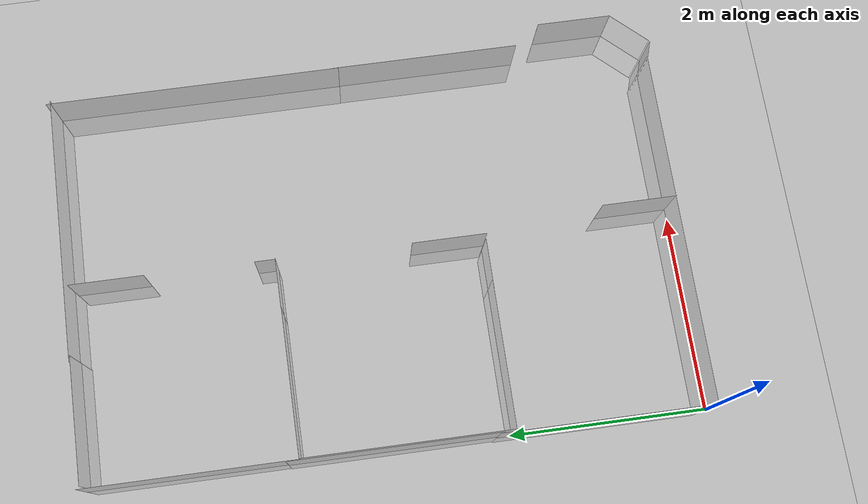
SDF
<sdf version="1.7">
 <world name="default">
  <light name="sun" type="directional">
   <pose>0 0 10 0 -0 0</pose>
   <diffuse>0.8 0.8 0.8 1</diffuse>
   <specular>0.1 0.1 0.1 1</specular>
   <attenuation>
    <range>1000</range>
    <constant>0.9</constant>
    <linear>0.01</linear>
    <quadratic>0.001</quadratic>
   </attenuation>
   <direction>-0.5 0.5 -1</direction>
   <spot><inner_angle>0</inner_angle><outer_angle>0</outer_angle><falloff>0</falloff></spot>
  </light>
  <model name="ground_plane">
   <static>1</static>
   <link name="link">
    <collision name="collision">
     <geometry><plane><normal>0 0 1</normal><size>100 100</size></plane></geometry>
     <surface><friction><ode><mu>100</mu><mu2>50</mu2></ode></friction></surface>
    </collision>
    <visual name="visual">
     <cast_shadows>0</cast_shadows>
     <geometry><plane><normal>0 0 1</normal><size>100 100</size></plane></geometry>
     <material>
      <script><uri>file://media/materials/scripts/gazebo.material</uri><name>Gazebo/Grey</name></script>
     </material>
    </visual>
   </link>
  </model>
  <model name="wall_0">
   <static>1</static>
   <link name="link">
    <collision name="collision"><geometry><box><size>2.1336 0.001 1</size></box></geometry></collision>
    <visual name="visual">
     <geometry><box><size>2.1336 0.001 1</size></box></geometry>
     <material>
      <script><name>Gazebo/White</name><uri>file://media/materials/scripts/gazebo.material</uri></script>
     </material>
    </visual>
   </link>
   <pose>0 1.0668 0 0 -0 1.5708</pose>
  </model>
  <model name="wall_6">
   <static>1</static>
   <link name="link">
    <collision name="collision"><geometry><box><size>2.74321 0.001 1</size></box></geometry></collision>
    <visual name="visual">
     <geometry><box><size>2.74321 0.001 1</size></box></geometry>
     <material>
      <script><name>Gazebo/White</name><uri>file://media/materials/scripts/gazebo.material</uri></script>
     </material>
    </visual>
   </link>
   <pose>2.61691 6.21396 0 0 -0 0</pose>
  </model>
  <model name="wall_7">
   <static>1</static>
   <link name="link">
    <collision name="collision"><geometry><box><size>3.04801 0.001 1</size></box></geometry></collision>
    <visual name="visual">
     <geometry><box><size>3.04801 0.001 1</size></box></geometry>
     <material>
      <script><name>Gazebo/White</name><uri>file://media/materials/scripts/gazebo.material</uri></script>
     </material>
    </visual>
   </link>
   <pose>3.95892 4.73747 0 0 0 -1.5708</pose>
  </model>
  <model name="wall_8">
   <static>1</static>
   <link name="link">
    <collision name="collision"><geometry><box><size>3.65761 0.001 1</size></box></geometry></collision>
    <visual name="visual">
     <geometry><box><size>3.65761 0.001 1</size></box></geometry>
     <material>
      <script><name>Gazebo/White</name><uri>file://media/materials/scripts/gazebo.material</uri></script>
     </material>
    </visual>
   </link>
   <pose>1.8288 0 0 0 0 -3.14159</pose>
  </model>
  <model name="wall_9">
   <static>1</static>
   <link name="link">
    <collision name="collision"><geometry><box><size>0.762002 0.001 1</size></box></geometry></collision>
    <visual name="visual">
     <geometry><box><size>0.762002 0.001 1</size></box></geometry>
     <material>
      <script><name>Gazebo/White</name><uri>file://media/materials/scripts/gazebo.material</uri></script>
     </material>
    </visual>
   </link>
   <pose>4.16423 0.688017 0 0 -0 1.5708</pose>
  </model>
  <model name="wall_10">
   <static>1</static>
   <link name="link">
    <collision name="collision"><geometry><box><size>1.4986 0.001 1</size></box></geometry></collision>
    <visual name="visual">
     <geometry><box><size>1.4986 0.001 1</size></box></geometry>
     <material>
      <script><name>Gazebo/White</name><uri>file://media/materials/scripts/gazebo.material</uri></script>
     </material>
    </visual>
   </link>
   <pose>0.764395 1.97813 0 0 -0 0</pose>
  </model>
  <model name="wall_11">
   <static>1</static>
   <link name="link">
    <collision name="collision"><geometry><box><size>0.762002 0.001 1</size></box></geometry></collision>
    <visual name="visual">
     <geometry><box><size>0.762002 0.001 1</size></box></geometry>
     <material>
      <script><name>Gazebo/White</name><uri>file://media/materials/scripts/gazebo.material</uri></script>
     </material>
    </visual>
   </link>
   <pose>2.12287 0.371634 0 0 0 -1.5708</pose>
  </model>
  <model name="wall_12">
   <static>1</static>
   <link name="link">
    <collision name="collision"><geometry><box><size>1.4986 0.001 1</size></box></geometry></collision>
    <visual name="visual">
     <geometry><box><size>1.4986 0.001 1</size></box></geometry>
     <material>
      <script><name>Gazebo/White</name><uri>file://media/materials/scripts/gazebo.material</uri></script>
     </material>
    </visual>
   </link>
   <pose>0.76466 4.09621 0 0 0 -3.14159</pose>
  </model>
  <model name="wall_19">
   <static>1</static>
   <link name="link">
    <collision name="collision"><geometry><box><size>1.27 0.001 1</size></box></geometry></collision>
    <visual name="visual">
     <geometry><box><size>1.27 0.001 1</size></box></geometry>
     <material>
      <script><name>Gazebo/White</name><uri>file://media/materials/scripts/gazebo.material</uri></script>
     </material>
    </visual>
   </link>
   <pose>0.674367 6.2036 0 0 -0 0</pose>
  </model>
  <model name="wall_20">
   <static>1</static>
   <link name="link">
    <collision name="collision"><geometry><box><size>0.2032 0.001 1</size></box></geometry></collision>
    <visual name="visual">
     <geometry><box><size>0.2032 0.001 1</size></box></geometry>
     <material>
      <script><name>Gazebo/White</name><uri>file://media/materials/scripts/gazebo.material</uri></script>
     </material>
    </visual>
   </link>
   <pose>2.00602 4.20513 0 0 0 -1.5708</pose>
  </model>
  <model name="wall_21">
   <static>1</static>
   <link name="link">
    <collision name="collision"><geometry><box><size>0.485267 0.001 1</size></box></geometry></collision>
    <visual name="visual">
     <geometry><box><size>0.485267 0.001 1</size></box></geometry>
     <material>
      <script><name>Gazebo/White</name><uri>file://media/materials/scripts/gazebo.material</uri></script>
     </material>
    </visual>
   </link>
   <pose>3.99541 0.128873 0 0 0 -2.31917</pose>
  </model>
  <model name="wall_26">
   <static>1</static>
   <link name="link">
    <collision name="collision"><geometry><box><size>1.9304 0.001 1</size></box></geometry></collision>
    <visual name="visual">
     <geometry><box><size>1.9304 0.001 1</size></box></geometry>
     <material>
      <script><name>Gazebo/White</name><uri>file://media/materials/scripts/gazebo.material</uri></script>
     </material>
    </visual>
   </link>
   <pose>3.96138 2.30263 0 0 -0 1.5708</pose>
  </model>
  <gravity>0 0 -9.8</gravity>
  <magnetic_field>6e-06 2.3e-05 -4.2e-05</magnetic_field>
  <atmosphere type="adiabatic"/>
  <physics name="default_physics" default="0" type="ode">
   <max_step_size>0.001</max_step_size>
   <real_time_factor>1</real_time_factor>
   <real_time_update_rate>1000</real_time_update_rate>
  </physics>
  <scene><ambient>0.4 0.4 0.4 1</ambient><background>0.7 0.7 0.7 1</background><shadows>1</shadows></scene>
  <spherical_coordinates>
   <surface_model>EARTH_WGS84</surface_model>
   <latitude_deg>0</latitude_deg>
   <longitude_deg>0</longitude_deg>
   <elevation>0</elevation>
   <heading_deg>0</heading_deg>
  </spherical_coordinates>
  <model name="wall_0_clone">
   <static>1</static>
   <link name="link">
    <collision name="collision"><geometry><box><size>2.1336 0.001 1</size></box></geometry></collision>
    <visual name="visual">
     <geometry><box><size>2.1336 0.001 1</size></box></geometry>
     <material>
      <script><name>Gazebo/White</name><uri>file://media/materials/scripts/gazebo.material</uri></script>
     </material>
    </visual>
   </link>
   <pose>0.009123 3.15874 0 0 -0 1.5708</pose>
  </model>
  <model name="wall_0_clone_clone">
   <static>1</static>
   <link name="link">
    <collision name="collision"><geometry><box><size>2.1336 0.001 1</size></box></geometry></collision>
    <visual name="visual">
     <geometry><box><size>2.1336 0.001 1</size></box></geometry>
     <material>
      <script><name>Gazebo/White</name><uri>file://media/materials/scripts/gazebo.material</uri></script>
     </material>
    </visual>
   </link>
   <pose>0.013973 5.17143 0 0 -0 1.5708</pose>
  </model>
  <model name="wall_24_clone">
   <static>1</static>
   <link name="link">
    <collision name="collision"><geometry><box><size>0.508001 0.001 1</size></box></geometry></collision>
    <visual name="visual">
     <geometry><box><size>0.508001 0.001 1</size></box></geometry>
     <material>
      <script><name>Gazebo/White</name><uri>file://media/materials/scripts/gazebo.material</uri></script>
     </material>
    </visual>
   </link>
   <pose>1.68339 1.97667 0 0 -0 0</pose>
  </model>
  <model name="wall_24_clone_0">
   <static>1</static>
   <link name="link">
    <collision name="collision"><geometry><box><size>0.508001 0.001 1</size></box></geometry></collision>
    <visual name="visual">
     <geometry><box><size>0.508001 0.001 1</size></box></geometry>
     <material>
      <script><name>Gazebo/White</name><uri>file://media/materials/scripts/gazebo.material</uri></script>
     </material>
    </visual>
   </link>
   <pose>1.76423 4.09901 0 0 -0 0</pose>
  </model>
  <model name="wall_11_clone">
   <static>1</static>
   <link name="link">
    <collision name="collision"><geometry><box><size>0.762002 0.001 1</size></box></geometry></collision>
    <visual name="visual">
     <geometry><box><size>0.762002 0.001 1</size></box></geometry>
     <material>
      <script><name>Gazebo/White</name><uri>file://media/materials/scripts/gazebo.material</uri></script>
     </material>
    </visual>
   </link>
   <pose>1.9885 2.33755 0 0 0 -1.5708</pose>
  </model>
  <model name="wall_11_clone_0">
   <static>1</static>
   <link name="link">
    <collision name="collision"><geometry><box><size>0.762002 0.001 1</size></box></geometry></collision>
    <visual name="visual">
     <geometry><box><size>0.762002 0.001 1</size></box></geometry>
     <material>
      <script><name>Gazebo/White</name><uri>file://media/materials/scripts/gazebo.material</uri></script>
     </material>
    </visual>
   </link>
   <pose>2.01617 5.79524 0 0 0 -1.5708</pose>
  </model>
  <model name="wall_0_clone_0">
   <static>1</static>
   <link name="link">
    <collision name="collision"><geometry><box><size>2.1336 0.001 1</size></box></geometry></collision>
    <visual name="visual">
     <geometry><box><size>2.1336 0.001 1</size></box></geometry>
     <material>
      <script><name>Gazebo/White</name><uri>file://media/materials/scripts/gazebo.material</uri></script>
     </material>
    </visual>
   </link>
   <pose>0.02126 3.02299 0 0 -0 1.5708</pose>
  </model>
  <model name="wall_20_clone">
   <static>1</static>
   <link name="link">
    <collision name="collision"><geometry><box><size>0.2032 0.001 1</size></box></geometry></collision>
    <visual name="visual">
     <geometry><box><size>0.2032 0.001 1</size></box></geometry>
     <material>
      <script><name>Gazebo/White</name><uri>file://media/materials/scripts/gazebo.material</uri></script>
     </material>
    </visual>
   </link>
   <pose>3.7277 -0.030561 0 0 0 -0.310903</pose>
  </model>
 </world>
</sdf>
